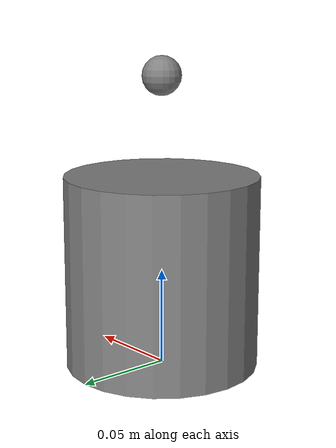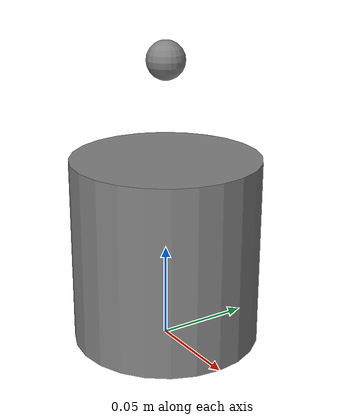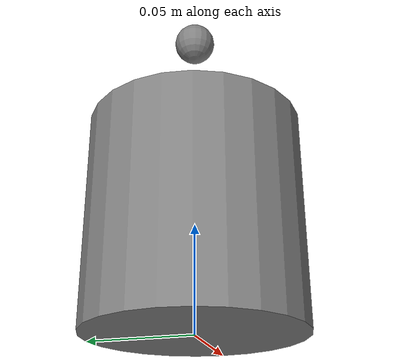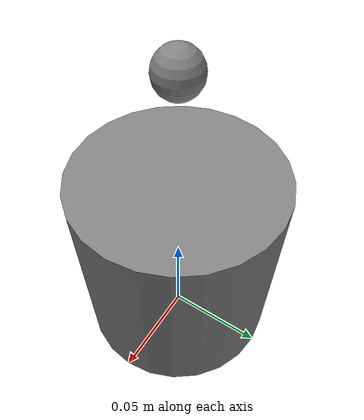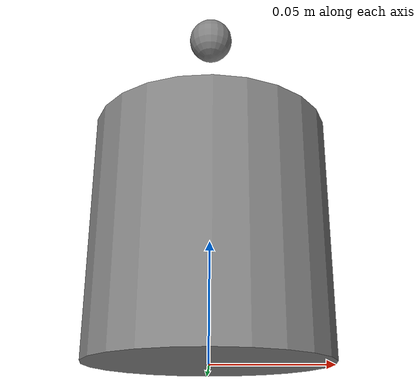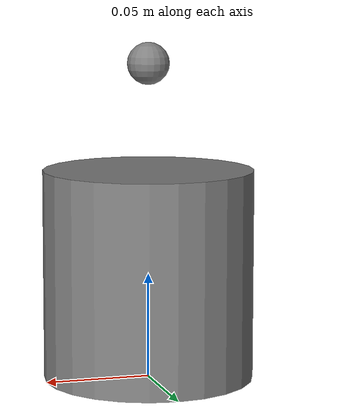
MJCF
<mujoco model="base">
  <compiler angle="radian" inertiafromgeom="true"/>
  <worldbody>
    <!-- Fixed base: no joints, welded to world -->
    <body name="base" pos="0 0 0.05">
      <geom name="base_geom" type="cylinder" size="0.05 0.05" rgba="0.5 0.5 0.5 1" density="1000"/>
      <!-- Attachment site for first link -->
      <site name="tip" pos="0 0 0.1" size="0.01"/>
    </body>
  </worldbody>
</mujoco>
